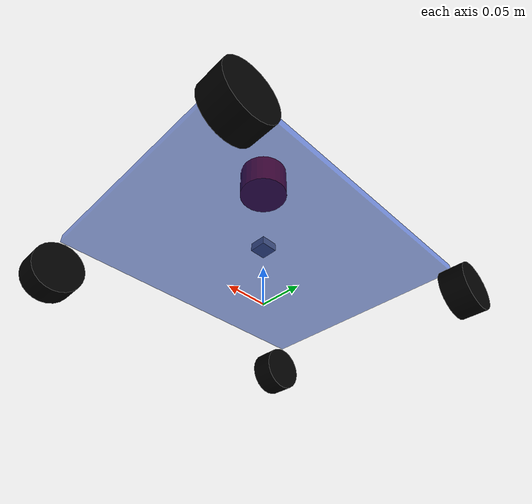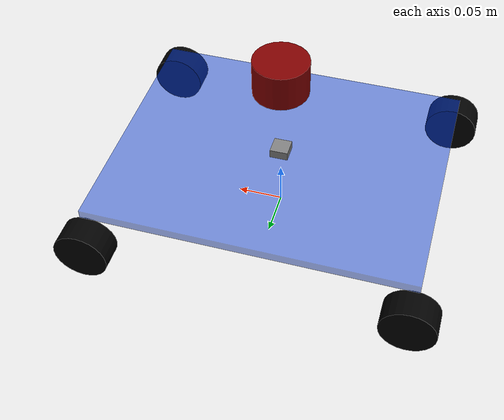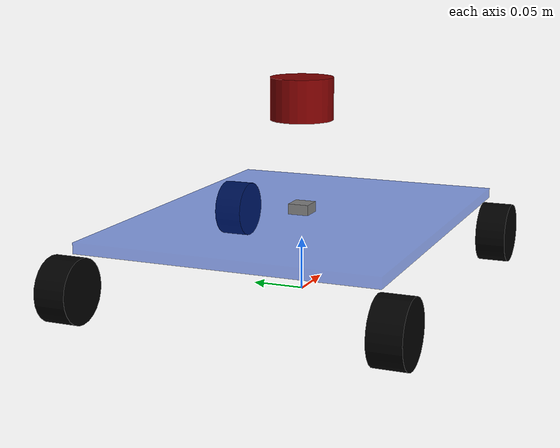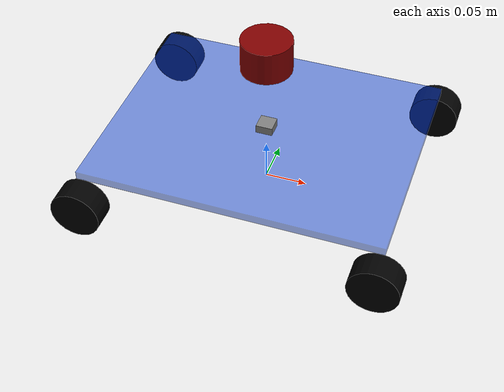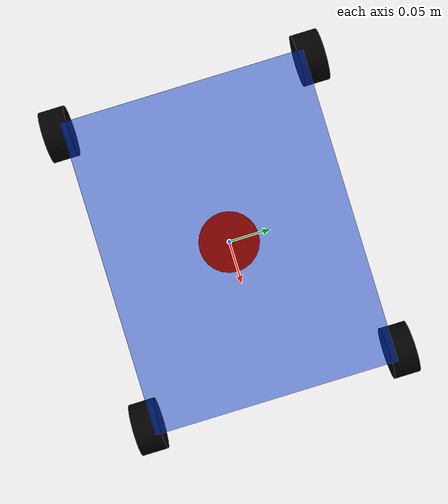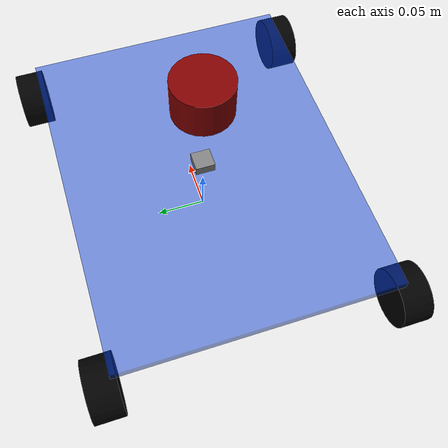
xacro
<?xml version="1.0" encoding="UTF-8"?>
<robot name="robot_car_mecanum" xmlns:xacro="http://www.ros.org/wiki/xacro">

  <xacro:include filename="$(find robot_desc)/urdf/four_wheel_chassis.xacro"/>

  <ros2_control name="MecanumChassisSystem" type="system">
    <hardware>
      <plugin>mecanum_wheel_chassis_hw/MecanumWheelChassisHW</plugin>
      <param name="serial_port">/dev/ttyUSB0</param>
      <param name="baud_rate">115200</param>
      <param name="encoder_ppr">780.0</param>
      <param name="wheel_radius">0.03</param>
      <param name="gear_ratio">1</param>
      <param name="filter_enable">true</param>
    </hardware>

    <joint name="left_front_wheel_joint">
      <command_interface name="velocity"/>
      <state_interface name="velocity"/>
      <state_interface name="position"/>
    </joint>
    <joint name="right_front_wheel_joint">
      <command_interface name="velocity"/>
      <state_interface name="velocity"/>
      <state_interface name="position"/>
    </joint>
    <joint name="left_rear_wheel_joint">
      <command_interface name="velocity"/>
      <state_interface name="velocity"/>
      <state_interface name="position"/>
    </joint>
    <joint name="right_rear_wheel_joint">
      <command_interface name="velocity"/>
      <state_interface name="velocity"/>
      <state_interface name="position"/>
    </joint>
  </ros2_control>

  <ros2_control name="IMUSystem" type="sensor">
    <hardware>
      <plugin>mpu6050_hw/MPU6050HW</plugin>
      <param name="i2c_file_name">/dev/i2c-1</param>
    </hardware>

    <sensor name="mpu6050">
      <state_interface name="orientation.w"/>
      <state_interface name="orientation.x"/>
      <state_interface name="orientation.y"/>
      <state_interface name="orientation.z"/>
      <state_interface name="angular_velocity.x"/>
      <state_interface name="angular_velocity.y"/>
      <state_interface name="angular_velocity.z"/>
      <state_interface name="linear_acceleration.x"/>
      <state_interface name="linear_acceleration.y"/>
      <state_interface name="linear_acceleration.z"/>
    </sensor>
  </ros2_control>

</robot>

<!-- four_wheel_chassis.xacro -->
<robot name="four_wheel_chassis"
       xmlns:xacro="http://www.ros.org/wiki/xacro">

  <!-- ========================= 属性常量 ========================= -->
  <xacro:property name="PI" value="3.1415926535897931"/>

  <xacro:property name="base_length"  value="0.36"/>
  <xacro:property name="base_width"   value="0.28"/>
  <xacro:property name="base_height"  value="0.01"/>
  <xacro:property name="base_mass"    value="2.8"/>

  <xacro:property name="wheel_radius" value="0.03"/>
  <xacro:property name="wheel_length" value="0.03"/>
  <xacro:property name="wheel_mass"   value="0.09"/>
  <xacro:property name="wheel_offset_x" value="0.175"/>
  <xacro:property name="wheel_offset_y" value="0.15"/>
  <xacro:property name="wheel_offset_z" value="0.04"/>

  <xacro:property name="lidar_length" value="0.04"/>
  <xacro:property name="lidar_radius" value="0.03"/>
  <xacro:property name="lidar_mass" value="0.1"/>
  <xacro:property name="lidar_offset_x" value="0.0"/>
  <xacro:property name="lidar_offset_y" value="0.0"/>
  <xacro:property name="lidar_offset_z" value="0.115"/>

  <xacro:property name="imu_width" value="0.02"/>
  <xacro:property name="imu_length" value="0.02"/>
  <xacro:property name="imu_height" value="0.01"/>
  <xacro:property name="imu_mass" value="0.01"/>
  <xacro:property name="imu_offset_x" value="0.0"/>
  <xacro:property name="imu_offset_y" value="0.0"/>
  <xacro:property name="imu_offset_z" value="0.01"/>

  <!-- 颜色 -->
  <xacro:property name="base_color" value="0 0.2 0.8 0.5"/>
  <xacro:property name="wheel_color" value="0 0 0 1"/>
  <xacro:property name="lidar_color" value="0.5 0 0 1"/>
  <xacro:property name="imu_color" value="0.5 0.5 0.5 1"/>

  <!-- ========================= 材质宏 ========================= -->
  <material name="blue"><color rgba="${base_color}"/></material>
  <material name="black"><color rgba="${wheel_color}"/></material>
  <material name="red"><color rgba="${lidar_color}"/></material>
  <material name="gray"><color rgba="${imu_color}"/></material>

  <!-- ========================= 惯性宏 ========================= -->
  <xacro:macro name="box_inertia" params="mass x y z">
    <inertial>
      <mass value="${mass}"/>
      <inertia ixx="${mass*(y*y+z*z)/12}" ixy="0.0" ixz="0.0"
               iyy="${mass*(x*x+z*z)/12}" iyz="0.0"
               izz="${mass*(x*x+y*y)/12}"/>
    </inertial>
  </xacro:macro>

  <xacro:macro name="cyl_inertia" params="mass r h">
    <inertial>
      <mass value="${mass}"/>
      <inertia ixx="${mass*(3*r*r+h*h)/12}" ixy="0.0" ixz="0.0"
               iyy="${mass*(3*r*r+h*h)/12}" iyz="0.0"
               izz="${mass*r*r/2}"/>
    </inertial>
  </xacro:macro>

  <!-- ========================= 车轮宏 ========================= -->
  <xacro:macro name="create_wheel" params="name xyz rpy:='0 0 0'">
    <link name="${name}_wheel">
      <visual>
        <geometry><cylinder radius="${wheel_radius}" length="${wheel_length}"/></geometry>
        <origin xyz="0 0 0" rpy="${PI/2} 0 0"/>
        <material name="black"/>
      </visual>
      <collision>
        <geometry><cylinder radius="${wheel_radius}" length="${wheel_length}"/></geometry>
        <origin xyz="0 0 0" rpy="${PI/2} 0 0"/>
      </collision>
      <xacro:cyl_inertia mass="${wheel_mass}" r="${wheel_radius}" h="${wheel_length}"/>
    </link>

    <joint name="${name}_wheel_joint" type="continuous">
      <parent link="base_link"/>
      <child link="${name}_wheel"/>
      <origin xyz="${xyz}" rpy="${rpy}"/>
      <axis xyz="0 1 0"/>
    </joint>
  </xacro:macro>

  <!-- ========================= 主体 ========================= -->
  <link name="base_footprint"/>

  <joint name="base_to_footprint" type="fixed">
    <parent link="base_footprint"/>
    <child link="base_link"/>
    <origin xyz="0.0 0.0 0.07" rpy="0.0 0.0 0.0"/>
  </joint>

  <link name="base_link">
    <visual>
      <geometry><box size="${base_length} ${base_width} ${base_height}"/></geometry>
      <material name="blue"/>
    </visual>
    <collision>
      <geometry><box size="${base_length} ${base_width} ${base_height}"/></geometry>
    </collision>
    <xacro:box_inertia mass="${base_mass}" x="${base_length}" y="${base_width}" z="${base_height}"/>
  </link>

  <!-- 四麦轮 -->
  <xacro:create_wheel name="left_front"  xyz="${wheel_offset_x}  ${wheel_offset_y} -${wheel_offset_z}"/>
  <xacro:create_wheel name="right_front" xyz="${wheel_offset_x} -${wheel_offset_y} -${wheel_offset_z}"/>
  <xacro:create_wheel name="left_rear"   xyz="-${wheel_offset_x}  ${wheel_offset_y} -${wheel_offset_z}"/>
  <xacro:create_wheel name="right_rear"  xyz="-${wheel_offset_x} -${wheel_offset_y} -${wheel_offset_z}"/>

  <!-- 激光 -->
  <link name="laser_frame">
    <visual>
      <geometry><cylinder radius="${lidar_radius}" length="${lidar_length}"/></geometry>
      <material name="red"/>
    </visual>
    <collision>
      <geometry><cylinder radius="${lidar_radius}" length="${lidar_length}"/></geometry>
    </collision>
    <xacro:cyl_inertia mass="${lidar_mass}" r="${lidar_radius}" h="${lidar_length}"/>
  </link>
  <joint name="laser_joint" type="fixed">
    <parent link="base_link"/>
    <child link="laser_frame"/>
    <origin xyz="${lidar_offset_x} ${lidar_offset_y} ${lidar_offset_z}" rpy="0 0 0"/>
  </joint>

  <!-- IMU -->
  <link name="imu_link">
    <visual>
      <geometry><box size="${imu_width} ${imu_length} ${imu_height}"/></geometry>
      <material name="gray"/>
    </visual>
    <collision>
      <geometry><box size="${imu_width} ${imu_length} ${imu_height}"/></geometry>
    </collision>
    <xacro:box_inertia mass="${imu_mass}" x="${imu_width}" y="${imu_length}" z="${imu_height}"/>
  </link>
  <joint name="imu_joint" type="fixed">
    <parent link="base_link"/>
    <child link="imu_link"/>
    <origin xyz="${imu_offset_x} ${imu_offset_y} ${imu_offset_z}" rpy="0 0 0"/>
  </joint>

</robot>
